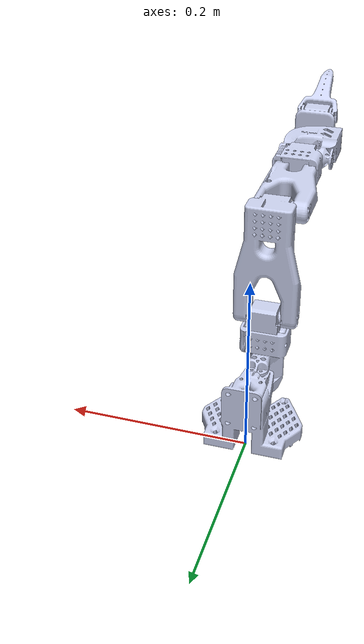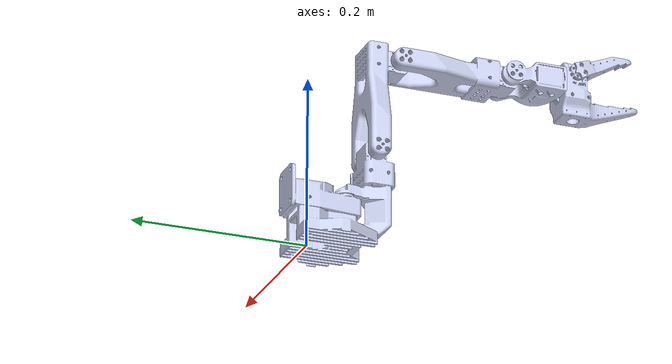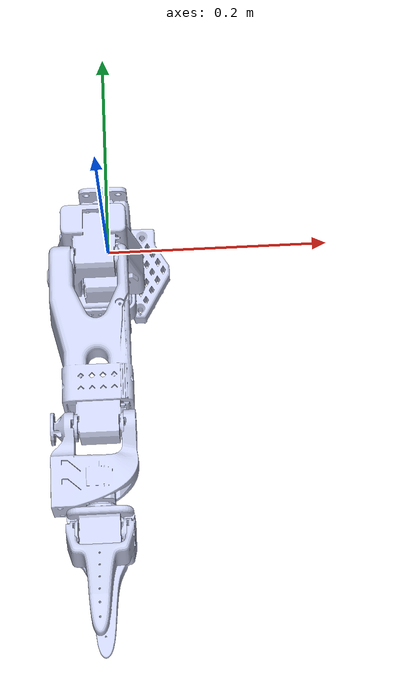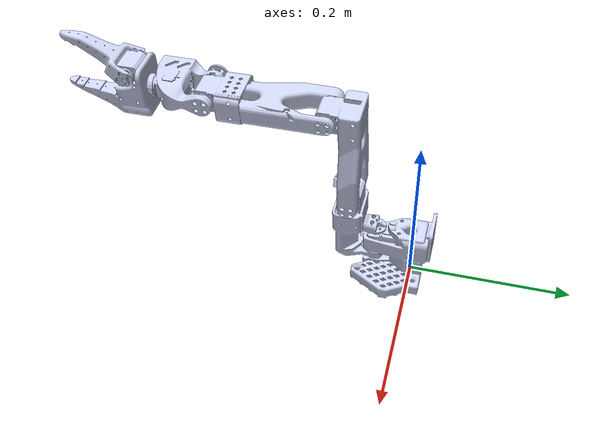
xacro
<?xml version="1.0"?>
<robot xmlns:xacro="http://www.ros.org/wiki/xacro" name="so_arm100">
    <xacro:arg name="prefix" default=""/>
    <xacro:arg name="hardware_type" default="mock_components"/>

    <!-- Import main macro -->
    <xacro:include filename="$(find so_arm100)/urdf/so_arm100_macro.xacro"/>

    <!-- Create robot by calling main macro -->
    <xacro:so_arm100 prefix="$(arg prefix)"/>

    <ros2_control name="so_arm100_system" type="system">
        <hardware>
            <xacro:if value="${'$(arg hardware_type)' == 'mock_components'}">
                <plugin>mock_components/GenericSystem</plugin>
            </xacro:if>
            <xacro:if value="${'$(arg hardware_type)' == 'real'}">
                <plugin>feetech_ros2_driver/FeetechHardwareInterface</plugin>
                <param name="usb_port">/dev/LeRobotFollower</param>
            </xacro:if>
        </hardware>
        <joint name="shoulder_pan_joint">
            <param name="id">1</param>
            <param name="offset">2048</param>
            <param name="p_coefficient">8</param>
            <command_interface name="position"/>
            <state_interface name="position"/>
            <state_interface name="velocity"/>
        </joint>
        <joint name="shoulder_lift_joint">
            <param name="id">2</param>
            <param name="offset">2125</param>
            <param name="p_coefficient">16</param>
            <command_interface name="position"/>
            <state_interface name="position"/>
            <state_interface name="velocity"/>
        </joint>
        <joint name="elbow_joint">
            <param name="id">3</param>
            <param name="offset">2080</param>
            <param name="p_coefficient">16</param>
            <command_interface name="position"/>
            <state_interface name="position"/>
            <state_interface name="velocity"/>
        </joint>
        <joint name="wrist_pitch_joint">
            <param name="id">4</param>
            <param name="offset">3110</param>
            <param name="p_coefficient">16</param>
            <command_interface name="position"/>
            <state_interface name="position"/>
            <state_interface name="velocity"/>
        </joint>
        <joint name="wrist_roll_joint">
            <param name="id">5</param>
            <param name="offset">2048</param>
            <param name="p_coefficient">16</param>
            <command_interface name="position"/>
            <state_interface name="position"/>
            <state_interface name="velocity"/>
        </joint>
        <joint name="jaw_joint">
            <param name="id">6</param>
            <param name="offset">2048</param>
            <param name="p_coefficient">16</param>
            <command_interface name="position"/>
            <state_interface name="position"/>
            <state_interface name="velocity"/>
        </joint>
    </ros2_control>

    <gazebo>
        <plugin name="gazebo_ros2_control" filename="libgazebo_ros2_control.so">
            <parameters>$(find so_arm100_moveit_config)/config/controllers.yaml</parameters>
        </plugin>
    </gazebo>
</robot>

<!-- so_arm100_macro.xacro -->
<robot xmlns:xacro="http://www.ros.org/wiki/xacro">
    <xacro:macro name="so_arm100" params="prefix">
        <xacro:include filename="$(find so_arm100)/urdf/so_arm100.urdf"/>
    </xacro:macro>
</robot>

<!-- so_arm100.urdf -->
<robot
  name="so_arm100">
  <link
    name="Base">
    <inertial>
      <origin
        xyz="-2.3054917368973E-06 -0.0176601899267237 0.031113668238176"
        rpy="0 0 0" />
      <mass
        value="0.193749012982645" />
      <inertia
        ixx="0.000137687906786269"
        ixy="-4.28474999585736E-09"
        ixz="2.103221173073E-08"
        iyy="0.00014498981682198"
        iyz="-2.26441221181679E-05"
        izz="0.000168676019768194" />
    </inertial>
    <visual>
      <origin
        xyz="0 0 0"
        rpy="0 0 0" />
      <geometry>
        <mesh
          filename="package://so_arm100/meshes/Base.STL" />
      </geometry>
      <material
        name="">
        <color
          rgba="0.792156862745098 0.819607843137255 0.933333333333333 1" />
      </material>
    </visual>
    <collision>
      <origin
        xyz="0 0 0"
        rpy="0 0 0" />
      <geometry>
        <mesh
          filename="package://so_arm100/meshes/Base.STL" />
      </geometry>
    </collision>
  </link>
  <link
    name="shoulder_link">
    <inertial>
      <origin
        xyz="-9.1232E-05 0.04538 0.031241"
        rpy="0 0 0" />
      <mass
        value="0.11865" />
      <inertia
        ixx="5.9025E-05"
        ixy="4.908E-07"
        ixz="-5.9045E-08"
        iyy="3.2118E-05"
        iyz="-4.5803E-06"
        izz="5.859E-05" />
    </inertial>
    <visual>
      <origin
        xyz="0 0 0"
        rpy="0 0 0" />
      <geometry>
        <mesh
          filename="package://so_arm100/meshes/shoulder_link.STL" />
      </geometry>
      <material
        name="">
        <color
          rgba="0.79216 0.81961 0.93333 1" />
      </material>
    </visual>
    <collision>
      <origin
        xyz="0 0 0"
        rpy="0 0 0" />
      <geometry>
        <mesh
          filename="package://so_arm100/meshes/shoulder_link.STL" />
      </geometry>
    </collision>
  </link>
  <joint
    name="shoulder_pan_joint"
    type="revolute">
    <origin
      xyz="0 -0.0452 0.0305"
      rpy="1.5708 0 0" />
    <parent
      link="Base" />
    <child
      link="shoulder_link" />
    <axis
      xyz="0 -1 0" />
    <limit
      lower="-1.57"
      upper="1.57"
      effort="100"
      velocity="10" />
  </joint>
  <link
    name="upper_arm_link">
    <inertial>
      <origin
        xyz="0.0156827947709601 0.0701802155153415 0.00310545123916983"
        rpy="0 0 0" />
      <mass
        value="0.162409284912556" />
      <inertia
        ixx="0.000167153147342833"
        ixy="1.03902639480366E-06"
        ixz="-1.20158973046588E-08"
        iyy="7.01946994486248E-05"
        iyz="2.11884860629144E-06"
        izz="0.000213280242264327" />
    </inertial>
    <visual>
      <origin
        xyz="0 0 0"
        rpy="0 0 0" />
      <geometry>
        <mesh
          filename="package://so_arm100/meshes/upper_arm_link.STL" />
      </geometry>
      <material
        name="">
        <color
          rgba="0.792156862745098 0.819607843137255 0.933333333333333 1" />
      </material>
    </visual>
    <collision>
      <origin
        xyz="0 0 0"
        rpy="0 0 0" />
      <geometry>
        <mesh
          filename="package://so_arm100/meshes/upper_arm_link.STL" />
      </geometry>
    </collision>
  </link>
  <joint
    name="shoulder_lift_joint"
    type="revolute">
    <origin
      xyz="-0.0158 0.0885 0.0306"
      rpy="0 0 0" />
    <parent
      link="shoulder_link" />
    <child
      link="upper_arm_link" />
    <axis
      xyz="1 0 0" />
    <limit
      lower="-1.57"
      upper="1.57"
      effort="100"
      velocity="10" />
  </joint>
  <link
    name="forearm_link">
    <inertial>
      <origin
        xyz="-0.0193960375787366 0.00137796346147245 0.0768006759493438"
        rpy="0 0 0" />
      <mass
        value="0.147967771056037" />
      <inertia
        ixx="0.000105333994797778"
        ixy="1.73059614958688E-07"
        ixz="-1.17203066998378E-05"
        iyy="0.000138766651583021"
        iyz="1.77429933964553E-06"
        izz="5.08741632405579E-05" />
    </inertial>
    <visual>
      <origin
        xyz="0 0 0"
        rpy="0 0 0" />
      <geometry>
        <mesh
          filename="package://so_arm100/meshes/forearm_link.STL" />
      </geometry>
      <material
        name="">
        <color
          rgba="0.792156862745098 0.819607843137255 0.933333333333333 1" />
      </material>
    </visual>
    <collision>
      <origin
        xyz="0 0 0"
        rpy="0 0 0" />
      <geometry>
        <mesh
          filename="package://so_arm100/meshes/forearm_link.STL" />
      </geometry>
    </collision>
  </link>
  <joint
    name="elbow_joint"
    type="revolute">
    <origin
      xyz="0.0317 0.11257 0.028"
      rpy="0 0 0" />
    <parent
      link="upper_arm_link" />
    <child
      link="forearm_link" />
    <axis
      xyz="1 0 0" />
    <limit
      lower="-1.57"
      upper="1.57"
      effort="100"
      velocity="10" />
  </joint>
  <link
    name="wrist_1_link">
    <inertial>
      <origin
        xyz="-0.0246265312098786 -2.34622216576663E-05 0.0352278998817509"
        rpy="0 0 0" />
      <mass
        value="0.0661320665571636" />
      <inertia
        ixx="1.95717492021957E-05"
        ixy="5.20090676290333E-09"
        ixz="6.62714409160709E-07"
        iyy="3.45401433304967E-05"
        iyz="-4.09549066423119E-08"
        izz="2.38028416973655E-05" />
    </inertial>
    <visual>
      <origin
        xyz="0 0 0"
        rpy="0 0 0" />
      <geometry>
        <mesh
          filename="package://so_arm100/meshes/wrist_1_link.STL" />
      </geometry>
      <material
        name="">
        <color
          rgba="0.792156862745098 0.819607843137255 0.933333333333333 1" />
      </material>
    </visual>
    <collision>
      <origin
        xyz="0 0 0"
        rpy="0 0 0" />
      <geometry>
        <mesh
          filename="package://so_arm100/meshes/wrist_1_link.STL" />
      </geometry>
    </collision>
  </link>
  <joint
    name="wrist_pitch_joint"
    type="revolute">
    <origin
      xyz="0 0.0052 0.1349"
      rpy="0 0 0" />
    <parent
      link="forearm_link" />
    <child
      link="wrist_1_link" />
    <axis
      xyz="1 0 0" />
    <limit
      lower="-1.57"
      upper="1.57"
      effort="100"
      velocity="10" />
  </joint>
  <link
    name="wrist_2_link">
    <inertial>
      <origin
        xyz="0.000450839256531511 -0.00553729747557533 0.0295127613946878"
        rpy="0 0 0" />
      <mass
        value="0.0931646505689508" />
      <inertia
        ixx="5.02748039583909E-05"
        ixy="-5.95959163846009E-07"
        ixz="1.40805138073889E-07"
        iyy="4.34101625280102E-05"
        iyz="7.09851524639004E-06"
        izz="3.04999659322705E-05" />
    </inertial>
    <visual>
      <origin
        xyz="0 0 0"
        rpy="0 0 0" />
      <geometry>
        <mesh
          filename="package://so_arm100/meshes/wrist_2_link.STL" />
      </geometry>
      <material
        name="">
        <color
          rgba="0.792156862745098 0.819607843137255 0.933333333333333 1" />
      </material>
    </visual>
    <collision>
      <origin
        xyz="0 0 0"
        rpy="0 0 0" />
      <geometry>
        <mesh
          filename="package://so_arm100/meshes/wrist_2_link.STL" />
      </geometry>
    </collision>
  </link>
  <joint
    name="wrist_roll_joint"
    type="revolute">
    <origin
      xyz="-0.0161 0 0.0586"
      rpy="0 0 0" />
    <parent
      link="wrist_1_link" />
    <child
      link="wrist_2_link" />
    <axis
      xyz="0 0 -1" />
    <limit
      lower="-1.57"
      upper="1.57"
      effort="100"
      velocity="10" />
  </joint>
  <link
    name="jaw_link">
    <inertial>
      <origin
        xyz="0.015016 0.013795 0.027133"
        rpy="0 0 0" />
      <mass
        value="0.020214" />
      <inertia
        ixx="8.9646E-06"
        ixy="-8.7106E-08"
        ixz="-1.719E-07"
        iyy="9.5035E-06"
        iyz="-3.2096E-06"
        izz="4.5648E-06" />
    </inertial>
    <visual>
      <origin
        xyz="0 0 0"
        rpy="0 0 0" />
      <geometry>
        <mesh
          filename="package://so_arm100/meshes/jaw_link.STL" />
      </geometry>
      <material
        name="">
        <color
          rgba="0.79216 0.81961 0.93333 1" />
      </material>
    </visual>
    <collision>
      <origin
        xyz="0 0 0"
        rpy="0 0 0" />
      <geometry>
        <mesh
          filename="package://so_arm100/meshes/jaw_link.STL" />
      </geometry>
    </collision>
  </link>
  <joint
    name="jaw_joint"
    type="revolute">
    <origin
      xyz="-0.0155 0.0202 0.0259"
      rpy="0 0 0" />
    <parent
      link="wrist_2_link" />
    <child
      link="jaw_link" />
    <axis
      xyz="1 0 0" />
    <limit
      lower="-0.7"
      upper="0.7"
      effort="100"
      velocity="10" />
  </joint>
  <ros2_control name="so_arm100_system" type="system">
    <hardware>
      <plugin>mock_components/GenericSystem</plugin>
    </hardware>
    <joint name="shoulder_pan_joint">
      <command_interface name="position"/>
      <state_interface name="position"/>
      <state_interface name="velocity"/>
    </joint>
    <joint name="shoulder_lift_joint">
      <command_interface name="position"/>
      <state_interface name="position"/>
      <state_interface name="velocity"/>
    </joint>
    <joint name="elbow_joint">
      <command_interface name="position"/>
      <state_interface name="position"/>
      <state_interface name="velocity"/>
    </joint>
    <joint name="wrist_pitch_joint">
      <command_interface name="position"/>
      <state_interface name="position"/>
      <state_interface name="velocity"/>
    </joint>
    <joint name="wrist_roll_joint">
      <command_interface name="position"/>
      <state_interface name="position"/>
      <state_interface name="velocity"/>
    </joint>
    <joint name="jaw_joint">
      <command_interface name="position"/>
      <state_interface name="position"/>
      <state_interface name="velocity"/>
    </joint>
  </ros2_control>
</robot>
